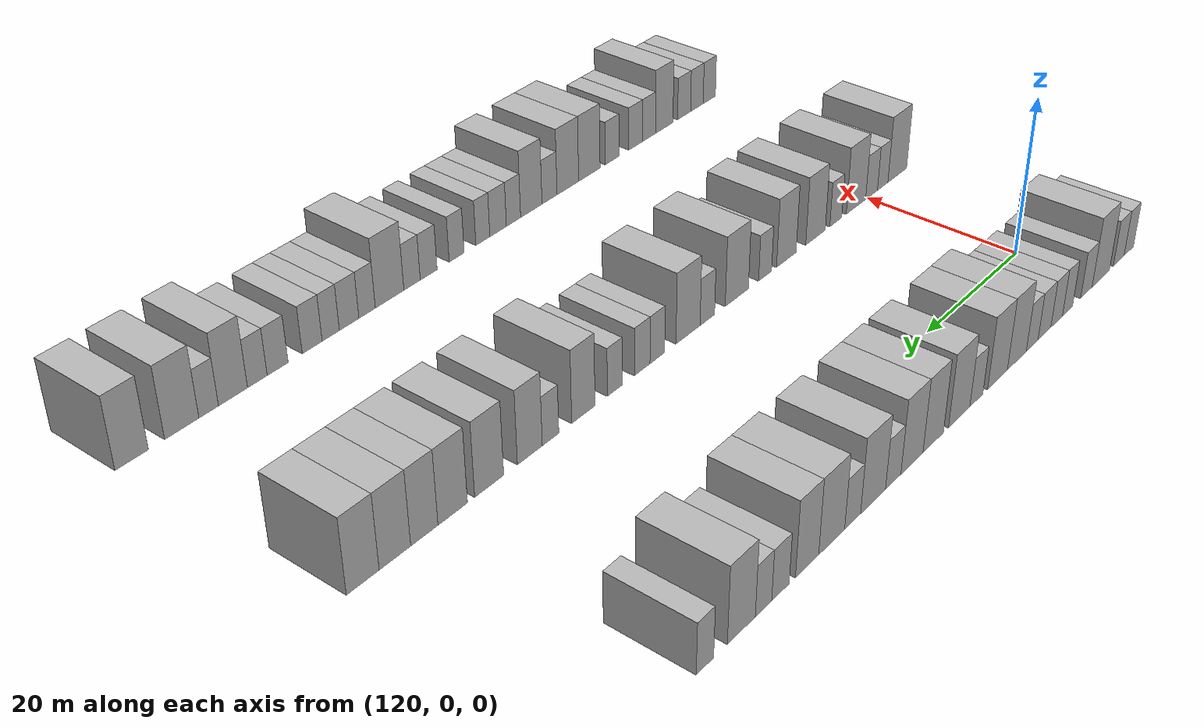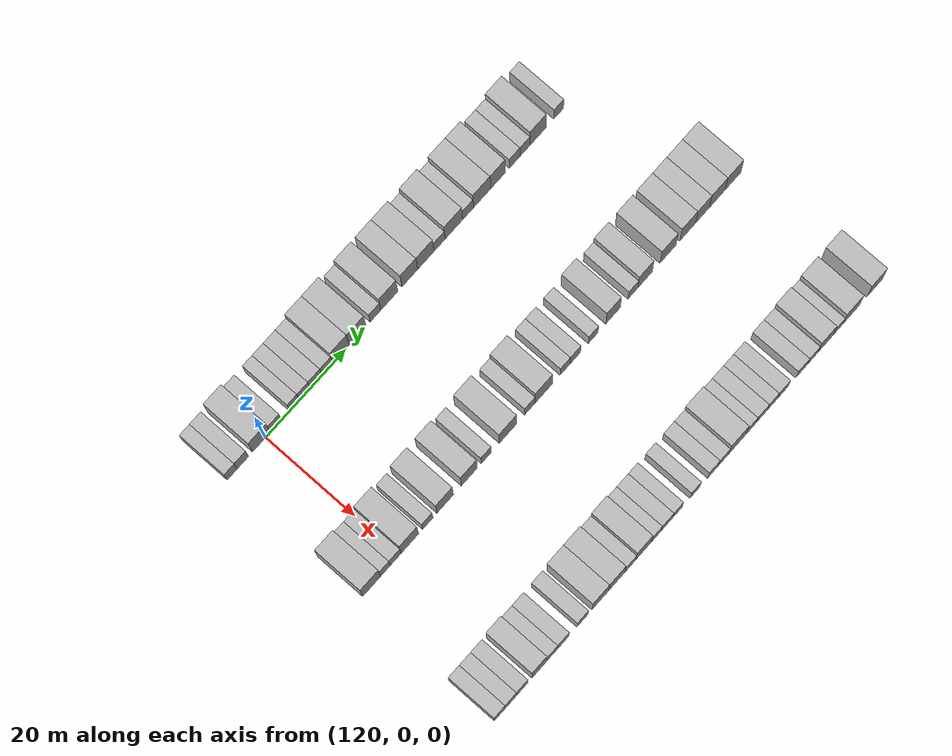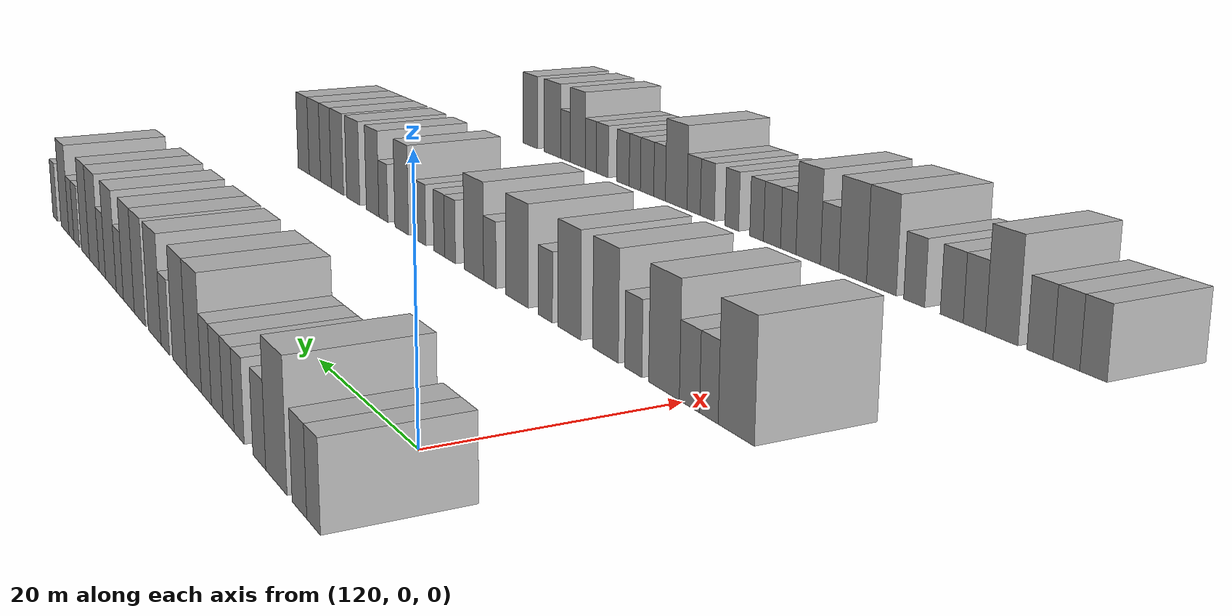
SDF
<sdf version="1.6">
 <world name="default">
  <model name="building_794">
   <static>1</static>
   <pose>115.0000 -8.3090 0 0.000000 0.000000 0.000000</pose>
   <link name="link">
    <pose>0 0 3.00 0 0 0</pose>
    <collision name="collision"><geometry><box><size>10.0000 2.4852 6.0000</size></box></geometry></collision>
    <visual name="visual">
     <cast_shadows>0</cast_shadows>
     <geometry><box><size>10.0000 2.4852 6.0000</size></box></geometry>
     <material>
      <script>
       <uri>model://HANNAS_wall/materials/scripts</uri>
       <uri>model://HANNAS_wall/materials/textures</uri>
       <name>vrc/HANNAS_wall</name>
      </script>
     </material>
    </visual>
   </link>
  </model>
  <model name="building_795">
   <static>1</static>
   <pose>115.0000 -5.6638 0 0.000000 0.000000 0.000000</pose>
   <link name="link">
    <pose>0 0 3.00 0 0 0</pose>
    <collision name="collision"><geometry><box><size>10.0000 2.8053 6.0000</size></box></geometry></collision>
    <visual name="visual">
     <cast_shadows>0</cast_shadows>
     <geometry><box><size>10.0000 2.8053 6.0000</size></box></geometry>
     <material>
      <script>
       <uri>model://HANNAS_wall/materials/scripts</uri>
       <uri>model://HANNAS_wall/materials/textures</uri>
       <name>vrc/HANNAS_wall</name>
      </script>
     </material>
    </visual>
   </link>
  </model>
  <model name="building_796">
   <static>1</static>
   <pose>115.0000 -1.0613 0 0.000000 0.000000 0.000000</pose>
   <link name="link">
    <pose>0 0 4.50 0 0 0</pose>
    <collision name="collision"><geometry><box><size>10.0000 4.3996 9.0000</size></box></geometry></collision>
    <visual name="visual">
     <cast_shadows>0</cast_shadows>
     <geometry><box><size>10.0000 4.3996 9.0000</size></box></geometry>
     <material>
      <script>
       <uri>model://HANNAS_wall/materials/scripts</uri>
       <uri>model://HANNAS_wall/materials/textures</uri>
       <name>vrc/HANNAS_wall</name>
      </script>
     </material>
    </visual>
   </link>
  </model>
  <model name="building_797">
   <static>1</static>
   <pose>115.0000 2.5554 0 0.000000 0.000000 0.000000</pose>
   <link name="link">
    <pose>0 0 3.00 0 0 0</pose>
    <collision name="collision"><geometry><box><size>10.0000 2.8340 6.0000</size></box></geometry></collision>
    <visual name="visual">
     <cast_shadows>0</cast_shadows>
     <geometry><box><size>10.0000 2.8340 6.0000</size></box></geometry>
     <material>
      <script>
       <uri>model://HANNAS_wall/materials/scripts</uri>
       <uri>model://HANNAS_wall/materials/textures</uri>
       <name>vrc/HANNAS_wall</name>
      </script>
     </material>
    </visual>
   </link>
  </model>
  <model name="building_798">
   <static>1</static>
   <pose>115.0000 7.1792 0 0.000000 0.000000 0.000000</pose>
   <link name="link">
    <pose>0 0 3.00 0 0 0</pose>
    <collision name="collision"><geometry><box><size>10.0000 2.4135 6.0000</size></box></geometry></collision>
    <visual name="visual">
     <cast_shadows>0</cast_shadows>
     <geometry><box><size>10.0000 2.4135 6.0000</size></box></geometry>
     <material>
      <script>
       <uri>model://HANNAS_wall/materials/scripts</uri>
       <uri>model://HANNAS_wall/materials/textures</uri>
       <name>vrc/HANNAS_wall</name>
      </script>
     </material>
    </visual>
   </link>
  </model>
  <model name="building_799">
   <static>1</static>
   <pose>115.0000 9.7535 0 0.000000 0.000000 0.000000</pose>
   <link name="link">
    <pose>0 0 3.00 0 0 0</pose>
    <collision name="collision"><geometry><box><size>10.0000 2.7353 6.0000</size></box></geometry></collision>
    <visual name="visual">
     <cast_shadows>0</cast_shadows>
     <geometry><box><size>10.0000 2.7353 6.0000</size></box></geometry>
     <material>
      <script>
       <uri>model://HANNAS_wall/materials/scripts</uri>
       <uri>model://HANNAS_wall/materials/textures</uri>
       <name>vrc/HANNAS_wall</name>
      </script>
     </material>
    </visual>
   </link>
  </model>
  <model name="building_800">
   <static>1</static>
   <pose>115.0000 12.6080 0 0.000000 0.000000 0.000000</pose>
   <link name="link">
    <pose>0 0 3.00 0 0 0</pose>
    <collision name="collision"><geometry><box><size>10.0000 2.9737 6.0000</size></box></geometry></collision>
    <visual name="visual">
     <cast_shadows>0</cast_shadows>
     <geometry><box><size>10.0000 2.9737 6.0000</size></box></geometry>
     <material>
      <script>
       <uri>model://HANNAS_wall/materials/scripts</uri>
       <uri>model://HANNAS_wall/materials/textures</uri>
       <name>vrc/HANNAS_wall</name>
      </script>
     </material>
    </visual>
   </link>
  </model>
  <model name="building_801">
   <static>1</static>
   <pose>115.0000 15.4291 0 0.000000 0.000000 0.000000</pose>
   <link name="link">
    <pose>0 0 3.00 0 0 0</pose>
    <collision name="collision"><geometry><box><size>10.0000 2.6686 6.0000</size></box></geometry></collision>
    <visual name="visual">
     <cast_shadows>0</cast_shadows>
     <geometry><box><size>10.0000 2.6686 6.0000</size></box></geometry>
     <material>
      <script>
       <uri>model://HANNAS_wall/materials/scripts</uri>
       <uri>model://HANNAS_wall/materials/textures</uri>
       <name>vrc/HANNAS_wall</name>
      </script>
     </material>
    </visual>
   </link>
  </model>
  <model name="building_802">
   <static>1</static>
   <pose>115.0000 18.8560 0 0.000000 0.000000 0.000000</pose>
   <link name="link">
    <pose>0 0 4.50 0 0 0</pose>
    <collision name="collision"><geometry><box><size>10.0000 4.1851 9.0000</size></box></geometry></collision>
    <visual name="visual">
     <cast_shadows>0</cast_shadows>
     <geometry><box><size>10.0000 4.1851 9.0000</size></box></geometry>
     <material>
      <script>
       <uri>model://HANNAS_wall/materials/scripts</uri>
       <uri>model://HANNAS_wall/materials/textures</uri>
       <name>vrc/HANNAS_wall</name>
      </script>
     </material>
    </visual>
   </link>
  </model>
  <model name="building_803">
   <static>1</static>
   <pose>115.0000 23.0743 0 0.000000 0.000000 0.000000</pose>
   <link name="link">
    <pose>0 0 4.50 0 0 0</pose>
    <collision name="collision"><geometry><box><size>10.0000 4.2515 9.0000</size></box></geometry></collision>
    <visual name="visual">
     <cast_shadows>0</cast_shadows>
     <geometry><box><size>10.0000 4.2515 9.0000</size></box></geometry>
     <material>
      <script>
       <uri>model://HANNAS_wall/materials/scripts</uri>
       <uri>model://HANNAS_wall/materials/textures</uri>
       <name>vrc/HANNAS_wall</name>
      </script>
     </material>
    </visual>
   </link>
  </model>
  <model name="building_804">
   <static>1</static>
   <pose>115.0000 27.5548 0 0.000000 0.000000 0.000000</pose>
   <link name="link">
    <pose>0 0 3.00 0 0 0</pose>
    <collision name="collision"><geometry><box><size>10.0000 2.7096 6.0000</size></box></geometry></collision>
    <visual name="visual">
     <cast_shadows>0</cast_shadows>
     <geometry><box><size>10.0000 2.7096 6.0000</size></box></geometry>
     <material>
      <script>
       <uri>model://HANNAS_wall/materials/scripts</uri>
       <uri>model://HANNAS_wall/materials/textures</uri>
       <name>vrc/HANNAS_wall</name>
      </script>
     </material>
    </visual>
   </link>
  </model>
  <model name="building_805">
   <static>1</static>
   <pose>115.0000 31.0713 0 0.000000 0.000000 0.000000</pose>
   <link name="link">
    <pose>0 0 4.50 0 0 0</pose>
    <collision name="collision"><geometry><box><size>10.0000 4.3234 9.0000</size></box></geometry></collision>
    <visual name="visual">
     <cast_shadows>0</cast_shadows>
     <geometry><box><size>10.0000 4.3234 9.0000</size></box></geometry>
     <material>
      <script>
       <uri>model://HANNAS_wall/materials/scripts</uri>
       <uri>model://HANNAS_wall/materials/textures</uri>
       <name>vrc/HANNAS_wall</name>
      </script>
     </material>
    </visual>
   </link>
  </model>
  <model name="building_806">
   <static>1</static>
   <pose>115.0000 36.2288 0 0.000000 0.000000 0.000000</pose>
   <link name="link">
    <pose>0 0 4.50 0 0 0</pose>
    <collision name="collision"><geometry><box><size>10.0000 3.9916 9.0000</size></box></geometry></collision>
    <visual name="visual">
     <cast_shadows>0</cast_shadows>
     <geometry><box><size>10.0000 3.9916 9.0000</size></box></geometry>
     <material>
      <script>
       <uri>model://HANNAS_wall/materials/scripts</uri>
       <uri>model://HANNAS_wall/materials/textures</uri>
       <name>vrc/HANNAS_wall</name>
      </script>
     </material>
    </visual>
   </link>
  </model>
  <model name="building_807">
   <static>1</static>
   <pose>115.0000 40.3157 0 0.000000 0.000000 0.000000</pose>
   <link name="link">
    <pose>0 0 4.50 0 0 0</pose>
    <collision name="collision"><geometry><box><size>10.0000 4.1824 9.0000</size></box></geometry></collision>
    <visual name="visual">
     <cast_shadows>0</cast_shadows>
     <geometry><box><size>10.0000 4.1824 9.0000</size></box></geometry>
     <material>
      <script>
       <uri>model://HANNAS_wall/materials/scripts</uri>
       <uri>model://HANNAS_wall/materials/textures</uri>
       <name>vrc/HANNAS_wall</name>
      </script>
     </material>
    </visual>
   </link>
  </model>
  <model name="building_808">
   <static>1</static>
   <pose>115.0000 43.8195 0 0.000000 0.000000 0.000000</pose>
   <link name="link">
    <pose>0 0 3.00 0 0 0</pose>
    <collision name="collision"><geometry><box><size>10.0000 2.8252 6.0000</size></box></geometry></collision>
    <visual name="visual">
     <cast_shadows>0</cast_shadows>
     <geometry><box><size>10.0000 2.8252 6.0000</size></box></geometry>
     <material>
      <script>
       <uri>model://HANNAS_wall/materials/scripts</uri>
       <uri>model://HANNAS_wall/materials/textures</uri>
       <name>vrc/HANNAS_wall</name>
      </script>
     </material>
    </visual>
   </link>
  </model>
  <model name="building_809">
   <static>1</static>
   <pose>115.0000 47.4599 0 0.000000 0.000000 0.000000</pose>
   <link name="link">
    <pose>0 0 4.50 0 0 0</pose>
    <collision name="collision"><geometry><box><size>10.0000 4.4556 9.0000</size></box></geometry></collision>
    <visual name="visual">
     <cast_shadows>0</cast_shadows>
     <geometry><box><size>10.0000 4.4556 9.0000</size></box></geometry>
     <material>
      <script>
       <uri>model://HANNAS_wall/materials/scripts</uri>
       <uri>model://HANNAS_wall/materials/textures</uri>
       <name>vrc/HANNAS_wall</name>
      </script>
     </material>
    </visual>
   </link>
  </model>
  <model name="building_810">
   <static>1</static>
   <pose>115.0000 51.0722 0 0.000000 0.000000 0.000000</pose>
   <link name="link">
    <pose>0 0 3.00 0 0 0</pose>
    <collision name="collision"><geometry><box><size>10.0000 2.7689 6.0000</size></box></geometry></collision>
    <visual name="visual">
     <cast_shadows>0</cast_shadows>
     <geometry><box><size>10.0000 2.7689 6.0000</size></box></geometry>
     <material>
      <script>
       <uri>model://HANNAS_wall/materials/scripts</uri>
       <uri>model://HANNAS_wall/materials/textures</uri>
       <name>vrc/HANNAS_wall</name>
      </script>
     </material>
    </visual>
   </link>
  </model>
  <model name="building_811">
   <static>1</static>
   <pose>115.0000 54.6493 0 0.000000 0.000000 0.000000</pose>
   <link name="link">
    <pose>0 0 4.50 0 0 0</pose>
    <collision name="collision"><geometry><box><size>10.0000 4.3854 9.0000</size></box></geometry></collision>
    <visual name="visual">
     <cast_shadows>0</cast_shadows>
     <geometry><box><size>10.0000 4.3854 9.0000</size></box></geometry>
     <material>
      <script>
       <uri>model://HANNAS_wall/materials/scripts</uri>
       <uri>model://HANNAS_wall/materials/textures</uri>
       <name>vrc/HANNAS_wall</name>
      </script>
     </material>
    </visual>
   </link>
  </model>
  <model name="building_812">
   <static>1</static>
   <pose>115.0000 58.7381 0 0.000000 0.000000 0.000000</pose>
   <link name="link">
    <pose>0 0 4.50 0 0 0</pose>
    <collision name="collision"><geometry><box><size>10.0000 3.7921 9.0000</size></box></geometry></collision>
    <visual name="visual">
     <cast_shadows>0</cast_shadows>
     <geometry><box><size>10.0000 3.7921 9.0000</size></box></geometry>
     <material>
      <script>
       <uri>model://HANNAS_wall/materials/scripts</uri>
       <uri>model://HANNAS_wall/materials/textures</uri>
       <name>vrc/HANNAS_wall</name>
      </script>
     </material>
    </visual>
   </link>
  </model>
  <model name="building_813">
   <static>1</static>
   <pose>115.0000 63.0121 0 0.000000 0.000000 0.000000</pose>
   <link name="link">
    <pose>0 0 3.00 0 0 0</pose>
    <collision name="collision"><geometry><box><size>10.0000 2.7558 6.0000</size></box></geometry></collision>
    <visual name="visual">
     <cast_shadows>0</cast_shadows>
     <geometry><box><size>10.0000 2.7558 6.0000</size></box></geometry>
     <material>
      <script>
       <uri>model://HANNAS_wall/materials/scripts</uri>
       <uri>model://HANNAS_wall/materials/textures</uri>
       <name>vrc/HANNAS_wall</name>
      </script>
     </material>
    </visual>
   </link>
  </model>
  <model name="building_814">
   <static>1</static>
   <pose>115.0000 65.6531 0 0.000000 0.000000 0.000000</pose>
   <link name="link">
    <pose>0 0 3.00 0 0 0</pose>
    <collision name="collision"><geometry><box><size>10.0000 2.5263 6.0000</size></box></geometry></collision>
    <visual name="visual">
     <cast_shadows>0</cast_shadows>
     <geometry><box><size>10.0000 2.5263 6.0000</size></box></geometry>
     <material>
      <script>
       <uri>model://HANNAS_wall/materials/scripts</uri>
       <uri>model://HANNAS_wall/materials/textures</uri>
       <name>vrc/HANNAS_wall</name>
      </script>
     </material>
    </visual>
   </link>
  </model>
  <model name="building_815">
   <static>1</static>
   <pose>115.0000 69.0038 0 0.000000 0.000000 0.000000</pose>
   <link name="link">
    <pose>0 0 4.50 0 0 0</pose>
    <collision name="collision"><geometry><box><size>10.0000 4.1751 9.0000</size></box></geometry></collision>
    <visual name="visual">
     <cast_shadows>0</cast_shadows>
     <geometry><box><size>10.0000 4.1751 9.0000</size></box></geometry>
     <material>
      <script>
       <uri>model://HANNAS_wall/materials/scripts</uri>
       <uri>model://HANNAS_wall/materials/textures</uri>
       <name>vrc/HANNAS_wall</name>
      </script>
     </material>
    </visual>
   </link>
  </model>
  <model name="building_816">
   <static>1</static>
   <pose>115.0000 74.3374 0 0.000000 0.000000 0.000000</pose>
   <link name="link">
    <pose>0 0 3.00 0 0 0</pose>
    <collision name="collision"><geometry><box><size>10.0000 2.4922 6.0000</size></box></geometry></collision>
    <visual name="visual">
     <cast_shadows>0</cast_shadows>
     <geometry><box><size>10.0000 2.4922 6.0000</size></box></geometry>
     <material>
      <script>
       <uri>model://HANNAS_wall/materials/scripts</uri>
       <uri>model://HANNAS_wall/materials/textures</uri>
       <name>vrc/HANNAS_wall</name>
      </script>
     </material>
    </visual>
   </link>
  </model>
  <model name="building_1031">
   <static>1</static>
   <pose>145.0000 -6.9509 0 0.000000 0.000000 0.000000</pose>
   <link name="link">
    <pose>0 0 4.50 0 0 0</pose>
    <collision name="collision"><geometry><box><size>10.0000 4.4426 9.0000</size></box></geometry></collision>
    <visual name="visual">
     <cast_shadows>0</cast_shadows>
     <geometry><box><size>10.0000 4.4426 9.0000</size></box></geometry>
     <material>
      <script>
       <uri>model://HANNAS_wall/materials/scripts</uri>
       <uri>model://HANNAS_wall/materials/textures</uri>
       <name>vrc/HANNAS_wall</name>
      </script>
     </material>
    </visual>
   </link>
  </model>
  <model name="building_1032">
   <static>1</static>
   <pose>145.0000 -3.5189 0 0.000000 0.000000 0.000000</pose>
   <link name="link">
    <pose>0 0 3.00 0 0 0</pose>
    <collision name="collision"><geometry><box><size>10.0000 2.4214 6.0000</size></box></geometry></collision>
    <visual name="visual">
     <cast_shadows>0</cast_shadows>
     <geometry><box><size>10.0000 2.4214 6.0000</size></box></geometry>
     <material>
      <script>
       <uri>model://HANNAS_wall/materials/scripts</uri>
       <uri>model://HANNAS_wall/materials/textures</uri>
       <name>vrc/HANNAS_wall</name>
      </script>
     </material>
    </visual>
   </link>
  </model>
  <model name="building_1033">
   <static>1</static>
   <pose>145.0000 -0.9528 0 0.000000 0.000000 0.000000</pose>
   <link name="link">
    <pose>0 0 3.00 0 0 0</pose>
    <collision name="collision"><geometry><box><size>10.0000 2.7107 6.0000</size></box></geometry></collision>
    <visual name="visual">
     <cast_shadows>0</cast_shadows>
     <geometry><box><size>10.0000 2.7107 6.0000</size></box></geometry>
     <material>
      <script>
       <uri>model://HANNAS_wall/materials/scripts</uri>
       <uri>model://HANNAS_wall/materials/textures</uri>
       <name>vrc/HANNAS_wall</name>
      </script>
     </material>
    </visual>
   </link>
  </model>
  <model name="building_1034">
   <static>1</static>
   <pose>145.0000 2.5804 0 0.000000 0.000000 0.000000</pose>
   <link name="link">
    <pose>0 0 4.50 0 0 0</pose>
    <collision name="collision"><geometry><box><size>10.0000 4.3556 9.0000</size></box></geometry></collision>
    <visual name="visual">
     <cast_shadows>0</cast_shadows>
     <geometry><box><size>10.0000 4.3556 9.0000</size></box></geometry>
     <material>
      <script>
       <uri>model://HANNAS_wall/materials/scripts</uri>
       <uri>model://HANNAS_wall/materials/textures</uri>
       <name>vrc/HANNAS_wall</name>
      </script>
     </material>
    </visual>
   </link>
  </model>
  <model name="building_1035">
   <static>1</static>
   <pose>145.0000 7.0560 0 0.000000 0.000000 0.000000</pose>
   <link name="link">
    <pose>0 0 3.00 0 0 0</pose>
    <collision name="collision"><geometry><box><size>10.0000 2.5956 6.0000</size></box></geometry></collision>
    <visual name="visual">
     <cast_shadows>0</cast_shadows>
     <geometry><box><size>10.0000 2.5956 6.0000</size></box></geometry>
     <material>
      <script>
       <uri>model://HANNAS_wall/materials/scripts</uri>
       <uri>model://HANNAS_wall/materials/textures</uri>
       <name>vrc/HANNAS_wall</name>
      </script>
     </material>
    </visual>
   </link>
  </model>
  <model name="building_1036">
   <static>1</static>
   <pose>145.0000 11.4209 0 0.000000 0.000000 0.000000</pose>
   <link name="link">
    <pose>0 0 4.50 0 0 0</pose>
    <collision name="collision"><geometry><box><size>10.0000 4.1343 9.0000</size></box></geometry></collision>
    <visual name="visual">
     <cast_shadows>0</cast_shadows>
     <geometry><box><size>10.0000 4.1343 9.0000</size></box></geometry>
     <material>
      <script>
       <uri>model://HANNAS_wall/materials/scripts</uri>
       <uri>model://HANNAS_wall/materials/textures</uri>
       <name>vrc/HANNAS_wall</name>
      </script>
     </material>
    </visual>
   </link>
  </model>
  <model name="building_1037">
   <static>1</static>
   <pose>145.0000 17.4856 0 0.000000 0.000000 0.000000</pose>
   <link name="link">
    <pose>0 0 4.50 0 0 0</pose>
    <collision name="collision"><geometry><box><size>10.0000 3.9952 9.0000</size></box></geometry></collision>
    <visual name="visual">
     <cast_shadows>0</cast_shadows>
     <geometry><box><size>10.0000 3.9952 9.0000</size></box></geometry>
     <material>
      <script>
       <uri>model://HANNAS_wall/materials/scripts</uri>
       <uri>model://HANNAS_wall/materials/textures</uri>
       <name>vrc/HANNAS_wall</name>
      </script>
     </material>
    </visual>
   </link>
  </model>
  <model name="building_1038">
   <static>1</static>
   <pose>145.0000 21.7685 0 0.000000 0.000000 0.000000</pose>
   <link name="link">
    <pose>0 0 3.00 0 0 0</pose>
    <collision name="collision"><geometry><box><size>10.0000 2.5706 6.0000</size></box></geometry></collision>
    <visual name="visual">
     <cast_shadows>0</cast_shadows>
     <geometry><box><size>10.0000 2.5706 6.0000</size></box></geometry>
     <material>
      <script>
       <uri>model://HANNAS_wall/materials/scripts</uri>
       <uri>model://HANNAS_wall/materials/textures</uri>
       <name>vrc/HANNAS_wall</name>
      </script>
     </material>
    </visual>
   </link>
  </model>
  <model name="building_1039">
   <static>1</static>
   <pose>145.0000 27.2655 0 0.000000 0.000000 0.000000</pose>
   <link name="link">
    <pose>0 0 4.50 0 0 0</pose>
    <collision name="collision"><geometry><box><size>10.0000 4.4233 9.0000</size></box></geometry></collision>
    <visual name="visual">
     <cast_shadows>0</cast_shadows>
     <geometry><box><size>10.0000 4.4233 9.0000</size></box></geometry>
     <material>
      <script>
       <uri>model://HANNAS_wall/materials/scripts</uri>
       <uri>model://HANNAS_wall/materials/textures</uri>
       <name>vrc/HANNAS_wall</name>
      </script>
     </material>
    </visual>
   </link>
  </model>
  <model name="building_1040">
   <static>1</static>
   <pose>145.0000 32.8113 0 0.000000 0.000000 0.000000</pose>
   <link name="link">
    <pose>0 0 3.00 0 0 0</pose>
    <collision name="collision"><geometry><box><size>10.0000 2.6684 6.0000</size></box></geometry></collision>
    <visual name="visual">
     <cast_shadows>0</cast_shadows>
     <geometry><box><size>10.0000 2.6684 6.0000</size></box></geometry>
     <material>
      <script>
       <uri>model://HANNAS_wall/materials/scripts</uri>
       <uri>model://HANNAS_wall/materials/textures</uri>
       <name>vrc/HANNAS_wall</name>
      </script>
     </material>
    </visual>
   </link>
  </model>
  <model name="building_1041">
   <static>1</static>
   <pose>145.0000 36.3082 0 0.000000 0.000000 0.000000</pose>
   <link name="link">
    <pose>0 0 4.50 0 0 0</pose>
    <collision name="collision"><geometry><box><size>10.0000 4.3254 9.0000</size></box></geometry></collision>
    <visual name="visual">
     <cast_shadows>0</cast_shadows>
     <geometry><box><size>10.0000 4.3254 9.0000</size></box></geometry>
     <material>
      <script>
       <uri>model://HANNAS_wall/materials/scripts</uri>
       <uri>model://HANNAS_wall/materials/textures</uri>
       <name>vrc/HANNAS_wall</name>
      </script>
     </material>
    </visual>
   </link>
  </model>
  <model name="building_1042">
   <static>1</static>
   <pose>145.0000 41.7417 0 0.000000 0.000000 0.000000</pose>
   <link name="link">
    <pose>0 0 3.00 0 0 0</pose>
    <collision name="collision"><geometry><box><size>10.0000 2.5417 6.0000</size></box></geometry></collision>
    <visual name="visual">
     <cast_shadows>0</cast_shadows>
     <geometry><box><size>10.0000 2.5417 6.0000</size></box></geometry>
     <material>
      <script>
       <uri>model://HANNAS_wall/materials/scripts</uri>
       <uri>model://HANNAS_wall/materials/textures</uri>
       <name>vrc/HANNAS_wall</name>
      </script>
     </material>
    </visual>
   </link>
  </model>
  <model name="building_1043">
   <static>1</static>
   <pose>145.0000 44.3353 0 0.000000 0.000000 0.000000</pose>
   <link name="link">
    <pose>0 0 3.00 0 0 0</pose>
    <collision name="collision"><geometry><box><size>10.0000 2.6455 6.0000</size></box></geometry></collision>
    <visual name="visual">
     <cast_shadows>0</cast_shadows>
     <geometry><box><size>10.0000 2.6455 6.0000</size></box></geometry>
     <material>
      <script>
       <uri>model://HANNAS_wall/materials/scripts</uri>
       <uri>model://HANNAS_wall/materials/textures</uri>
       <name>vrc/HANNAS_wall</name>
      </script>
     </material>
    </visual>
   </link>
  </model>
  <model name="building_1044">
   <static>1</static>
   <pose>145.0000 48.8938 0 0.000000 0.000000 0.000000</pose>
   <link name="link">
    <pose>0 0 3.00 0 0 0</pose>
    <collision name="collision"><geometry><box><size>10.0000 2.4715 6.0000</size></box></geometry></collision>
    <visual name="visual">
     <cast_shadows>0</cast_shadows>
     <geometry><box><size>10.0000 2.4715 6.0000</size></box></geometry>
     <material>
      <script>
       <uri>model://HANNAS_wall/materials/scripts</uri>
       <uri>model://HANNAS_wall/materials/textures</uri>
       <name>vrc/HANNAS_wall</name>
      </script>
     </material>
    </visual>
   </link>
  </model>
  <model name="building_1045">
   <static>1</static>
   <pose>145.0000 53.9756 0 0.000000 0.000000 0.000000</pose>
   <link name="link">
    <pose>0 0 4.50 0 0 0</pose>
    <collision name="collision"><geometry><box><size>10.0000 3.6921 9.0000</size></box></geometry></collision>
    <visual name="visual">
     <cast_shadows>0</cast_shadows>
     <geometry><box><size>10.0000 3.6921 9.0000</size></box></geometry>
     <material>
      <script>
       <uri>model://HANNAS_wall/materials/scripts</uri>
       <uri>model://HANNAS_wall/materials/textures</uri>
       <name>vrc/HANNAS_wall</name>
      </script>
     </material>
    </visual>
   </link>
  </model>
  <model name="building_1046">
   <static>1</static>
   <pose>145.0000 59.0805 0 0.000000 0.000000 0.000000</pose>
   <link name="link">
    <pose>0 0 3.00 0 0 0</pose>
    <collision name="collision"><geometry><box><size>10.0000 2.5176 6.0000</size></box></geometry></collision>
    <visual name="visual">
     <cast_shadows>0</cast_shadows>
     <geometry><box><size>10.0000 2.5176 6.0000</size></box></geometry>
     <material>
      <script>
       <uri>model://HANNAS_wall/materials/scripts</uri>
       <uri>model://HANNAS_wall/materials/textures</uri>
       <name>vrc/HANNAS_wall</name>
      </script>
     </material>
    </visual>
   </link>
  </model>
  <model name="building_1047">
   <static>1</static>
   <pose>145.0000 62.1937 0 0.000000 0.000000 0.000000</pose>
   <link name="link">
    <pose>0 0 4.50 0 0 0</pose>
    <collision name="collision"><geometry><box><size>10.0000 3.7089 9.0000</size></box></geometry></collision>
    <visual name="visual">
     <cast_shadows>0</cast_shadows>
     <geometry><box><size>10.0000 3.7089 9.0000</size></box></geometry>
     <material>
      <script>
       <uri>model://HANNAS_wall/materials/scripts</uri>
       <uri>model://HANNAS_wall/materials/textures</uri>
       <name>vrc/HANNAS_wall</name>
      </script>
     </material>
    </visual>
   </link>
  </model>
  <model name="building_1048">
   <static>1</static>
   <pose>145.0000 68.1113 0 0.000000 0.000000 0.000000</pose>
   <link name="link">
    <pose>0 0 4.50 0 0 0</pose>
    <collision name="collision"><geometry><box><size>10.0000 4.1263 9.0000</size></box></geometry></collision>
    <visual name="visual">
     <cast_shadows>0</cast_shadows>
     <geometry><box><size>10.0000 4.1263 9.0000</size></box></geometry>
     <material>
      <script>
       <uri>model://HANNAS_wall/materials/scripts</uri>
       <uri>model://HANNAS_wall/materials/textures</uri>
       <name>vrc/HANNAS_wall</name>
      </script>
     </material>
    </visual>
   </link>
  </model>
  <model name="building_1049">
   <static>1</static>
   <pose>145.0000 73.1885 0 0.000000 0.000000 0.000000</pose>
   <link name="link">
    <pose>0 0 4.50 0 0 0</pose>
    <collision name="collision"><geometry><box><size>10.0000 4.0281 9.0000</size></box></geometry></collision>
    <visual name="visual">
     <cast_shadows>0</cast_shadows>
     <geometry><box><size>10.0000 4.0281 9.0000</size></box></geometry>
     <material>
      <script>
       <uri>model://HANNAS_wall/materials/scripts</uri>
       <uri>model://HANNAS_wall/materials/textures</uri>
       <name>vrc/HANNAS_wall</name>
      </script>
     </material>
    </visual>
   </link>
  </model>
  <model name="building_1050">
   <static>1</static>
   <pose>145.0000 77.0109 0 0.000000 0.000000 0.000000</pose>
   <link name="link">
    <pose>0 0 4.50 0 0 0</pose>
    <collision name="collision"><geometry><box><size>10.0000 3.6168 9.0000</size></box></geometry></collision>
    <visual name="visual">
     <cast_shadows>0</cast_shadows>
     <geometry><box><size>10.0000 3.6168 9.0000</size></box></geometry>
     <material>
      <script>
       <uri>model://HANNAS_wall/materials/scripts</uri>
       <uri>model://HANNAS_wall/materials/textures</uri>
       <name>vrc/HANNAS_wall</name>
      </script>
     </material>
    </visual>
   </link>
  </model>
  <model name="building_1051">
   <static>1</static>
   <pose>145.0000 80.8475 0 0.000000 0.000000 0.000000</pose>
   <link name="link">
    <pose>0 0 4.50 0 0 0</pose>
    <collision name="collision"><geometry><box><size>10.0000 4.0564 9.0000</size></box></geometry></collision>
    <visual name="visual">
     <cast_shadows>0</cast_shadows>
     <geometry><box><size>10.0000 4.0564 9.0000</size></box></geometry>
     <material>
      <script>
       <uri>model://HANNAS_wall/materials/scripts</uri>
       <uri>model://HANNAS_wall/materials/textures</uri>
       <name>vrc/HANNAS_wall</name>
      </script>
     </material>
    </visual>
   </link>
  </model>
  <model name="building_1052">
   <static>1</static>
   <pose>145.0000 84.9177 0 0.000000 0.000000 0.000000</pose>
   <link name="link">
    <pose>0 0 4.50 0 0 0</pose>
    <collision name="collision"><geometry><box><size>10.0000 4.0839 9.0000</size></box></geometry></collision>
    <visual name="visual">
     <cast_shadows>0</cast_shadows>
     <geometry><box><size>10.0000 4.0839 9.0000</size></box></geometry>
     <material>
      <script>
       <uri>model://HANNAS_wall/materials/scripts</uri>
       <uri>model://HANNAS_wall/materials/textures</uri>
       <name>vrc/HANNAS_wall</name>
      </script>
     </material>
    </visual>
   </link>
  </model>
  <model name="building_1253">
   <static>1</static>
   <pose>175.0000 -8.8101 0 0.000000 0.000000 0.000000</pose>
   <link name="link">
    <pose>0 0 3.00 0 0 0</pose>
    <collision name="collision"><geometry><box><size>10.0000 2.7425 6.0000</size></box></geometry></collision>
    <visual name="visual">
     <cast_shadows>0</cast_shadows>
     <geometry><box><size>10.0000 2.7425 6.0000</size></box></geometry>
     <material>
      <script>
       <uri>model://HANNAS_wall/materials/scripts</uri>
       <uri>model://HANNAS_wall/materials/textures</uri>
       <name>vrc/HANNAS_wall</name>
      </script>
     </material>
    </visual>
   </link>
  </model>
  <model name="building_1254">
   <static>1</static>
   <pose>175.0000 -6.0400 0 0.000000 0.000000 0.000000</pose>
   <link name="link">
    <pose>0 0 3.00 0 0 0</pose>
    <collision name="collision"><geometry><box><size>10.0000 2.7976 6.0000</size></box></geometry></collision>
    <visual name="visual">
     <cast_shadows>0</cast_shadows>
     <geometry><box><size>10.0000 2.7976 6.0000</size></box></geometry>
     <material>
      <script>
       <uri>model://HANNAS_wall/materials/scripts</uri>
       <uri>model://HANNAS_wall/materials/textures</uri>
       <name>vrc/HANNAS_wall</name>
      </script>
     </material>
    </visual>
   </link>
  </model>
  <model name="building_1255">
   <static>1</static>
   <pose>175.0000 -3.2268 0 0.000000 0.000000 0.000000</pose>
   <link name="link">
    <pose>0 0 3.00 0 0 0</pose>
    <collision name="collision"><geometry><box><size>10.0000 2.8288 6.0000</size></box></geometry></collision>
    <visual name="visual">
     <cast_shadows>0</cast_shadows>
     <geometry><box><size>10.0000 2.8288 6.0000</size></box></geometry>
     <material>
      <script>
       <uri>model://HANNAS_wall/materials/scripts</uri>
       <uri>model://HANNAS_wall/materials/textures</uri>
       <name>vrc/HANNAS_wall</name>
      </script>
     </material>
    </visual>
   </link>
  </model>
  <model name="building_1256">
   <static>1</static>
   <pose>175.0000 1.0447 0 0.000000 0.000000 0.000000</pose>
   <link name="link">
    <pose>0 0 4.50 0 0 0</pose>
    <collision name="collision"><geometry><box><size>10.0000 3.7142 9.0000</size></box></geometry></collision>
    <visual name="visual">
     <cast_shadows>0</cast_shadows>
     <geometry><box><size>10.0000 3.7142 9.0000</size></box></geometry>
     <material>
      <script>
       <uri>model://HANNAS_wall/materials/scripts</uri>
       <uri>model://HANNAS_wall/materials/textures</uri>
       <name>vrc/HANNAS_wall</name>
      </script>
     </material>
    </visual>
   </link>
  </model>
  <model name="building_1257">
   <static>1</static>
   <pose>175.0000 4.2482 0 0.000000 0.000000 0.000000</pose>
   <link name="link">
    <pose>0 0 3.00 0 0 0</pose>
    <collision name="collision"><geometry><box><size>10.0000 2.6929 6.0000</size></box></geometry></collision>
    <visual name="visual">
     <cast_shadows>0</cast_shadows>
     <geometry><box><size>10.0000 2.6929 6.0000</size></box></geometry>
     <material>
      <script>
       <uri>model://HANNAS_wall/materials/scripts</uri>
       <uri>model://HANNAS_wall/materials/textures</uri>
       <name>vrc/HANNAS_wall</name>
      </script>
     </material>
    </visual>
   </link>
  </model>
  <model name="building_1258">
   <static>1</static>
   <pose>175.0000 7.0266 0 0.000000 0.000000 0.000000</pose>
   <link name="link">
    <pose>0 0 3.00 0 0 0</pose>
    <collision name="collision"><geometry><box><size>10.0000 2.8640 6.0000</size></box></geometry></collision>
    <visual name="visual">
     <cast_shadows>0</cast_shadows>
     <geometry><box><size>10.0000 2.8640 6.0000</size></box></geometry>
     <material>
      <script>
       <uri>model://HANNAS_wall/materials/scripts</uri>
       <uri>model://HANNAS_wall/materials/textures</uri>
       <name>vrc/HANNAS_wall</name>
      </script>
     </material>
    </visual>
   </link>
  </model>
  <model name="building_1259">
   <static>1</static>
   <pose>175.0000 11.8461 0 0.000000 0.000000 0.000000</pose>
   <link name="link">
    <pose>0 0 3.00 0 0 0</pose>
    <collision name="collision"><geometry><box><size>10.0000 2.7749 6.0000</size></box></geometry></collision>
    <visual name="visual">
     <cast_shadows>0</cast_shadows>
     <geometry><box><size>10.0000 2.7749 6.0000</size></box></geometry>
     <material>
      <script>
       <uri>model://HANNAS_wall/materials/scripts</uri>
       <uri>model://HANNAS_wall/materials/textures</uri>
       <name>vrc/HANNAS_wall</name>
      </script>
     </material>
    </visual>
   </link>
  </model>
  <model name="building_1260">
   <static>1</static>
   <pose>175.0000 16.3205 0 0.000000 0.000000 0.000000</pose>
   <link name="link">
    <pose>0 0 4.50 0 0 0</pose>
    <collision name="collision"><geometry><box><size>10.0000 4.1740 9.0000</size></box></geometry></collision>
    <visual name="visual">
     <cast_shadows>0</cast_shadows>
     <geometry><box><size>10.0000 4.1740 9.0000</size></box></geometry>
     <material>
      <script>
       <uri>model://HANNAS_wall/materials/scripts</uri>
       <uri>model://HANNAS_wall/materials/textures</uri>
       <name>vrc/HANNAS_wall</name>
      </script>
     </material>
    </visual>
   </link>
  </model>
  <model name="building_1261">
   <static>1</static>
   <pose>175.0000 20.4666 0 0.000000 0.000000 0.000000</pose>
   <link name="link">
    <pose>0 0 4.50 0 0 0</pose>
    <collision name="collision"><geometry><box><size>10.0000 4.1181 9.0000</size></box></geometry></collision>
    <visual name="visual">
     <cast_shadows>0</cast_shadows>
     <geometry><box><size>10.0000 4.1181 9.0000</size></box></geometry>
     <material>
      <script>
       <uri>model://HANNAS_wall/materials/scripts</uri>
       <uri>model://HANNAS_wall/materials/textures</uri>
       <name>vrc/HANNAS_wall</name>
      </script>
     </material>
    </visual>
   </link>
  </model>
  <model name="building_1262">
   <static>1</static>
   <pose>175.0000 23.9221 0 0.000000 0.000000 0.000000</pose>
   <link name="link">
    <pose>0 0 3.00 0 0 0</pose>
    <collision name="collision"><geometry><box><size>10.0000 2.7929 6.0000</size></box></geometry></collision>
    <visual name="visual">
     <cast_shadows>0</cast_shadows>
     <geometry><box><size>10.0000 2.7929 6.0000</size></box></geometry>
     <material>
      <script>
       <uri>model://HANNAS_wall/materials/scripts</uri>
       <uri>model://HANNAS_wall/materials/textures</uri>
       <name>vrc/HANNAS_wall</name>
      </script>
     </material>
    </visual>
   </link>
  </model>
  <model name="building_1263">
   <static>1</static>
   <pose>175.0000 27.2671 0 0.000000 0.000000 0.000000</pose>
   <link name="link">
    <pose>0 0 4.50 0 0 0</pose>
    <collision name="collision"><geometry><box><size>10.0000 3.8970 9.0000</size></box></geometry></collision>
    <visual name="visual">
     <cast_shadows>0</cast_shadows>
     <geometry><box><size>10.0000 3.8970 9.0000</size></box></geometry>
     <material>
      <script>
       <uri>model://HANNAS_wall/materials/scripts</uri>
       <uri>model://HANNAS_wall/materials/textures</uri>
       <name>vrc/HANNAS_wall</name>
      </script>
     </material>
    </visual>
   </link>
  </model>
  <model name="building_1264">
   <static>1</static>
   <pose>175.0000 30.4868 0 0.000000 0.000000 0.000000</pose>
   <link name="link">
    <pose>0 0 3.00 0 0 0</pose>
    <collision name="collision"><geometry><box><size>10.0000 2.5425 6.0000</size></box></geometry></collision>
    <visual name="visual">
     <cast_shadows>0</cast_shadows>
     <geometry><box><size>10.0000 2.5425 6.0000</size></box></geometry>
     <material>
      <script>
       <uri>model://HANNAS_wall/materials/scripts</uri>
       <uri>model://HANNAS_wall/materials/textures</uri>
       <name>vrc/HANNAS_wall</name>
      </script>
     </material>
    </visual>
   </link>
  </model>
  <model name="building_1265">
   <static>1</static>
   <pose>175.0000 33.2091 0 0.000000 0.000000 0.000000</pose>
   <link name="link">
    <pose>0 0 3.00 0 0 0</pose>
    <collision name="collision"><geometry><box><size>10.0000 2.9021 6.0000</size></box></geometry></collision>
    <visual name="visual">
     <cast_shadows>0</cast_shadows>
     <geometry><box><size>10.0000 2.9021 6.0000</size></box></geometry>
     <material>
      <script>
       <uri>model://HANNAS_wall/materials/scripts</uri>
       <uri>model://HANNAS_wall/materials/textures</uri>
       <name>vrc/HANNAS_wall</name>
      </script>
     </material>
    </visual>
   </link>
  </model>
  <model name="building_1266">
   <static>1</static>
   <pose>175.0000 35.8633 0 0.000000 0.000000 0.000000</pose>
   <link name="link">
    <pose>0 0 3.00 0 0 0</pose>
    <collision name="collision"><geometry><box><size>10.0000 2.4063 6.0000</size></box></geometry></collision>
    <visual name="visual">
     <cast_shadows>0</cast_shadows>
     <geometry><box><size>10.0000 2.4063 6.0000</size></box></geometry>
     <material>
      <script>
       <uri>model://HANNAS_wall/materials/scripts</uri>
       <uri>model://HANNAS_wall/materials/textures</uri>
       <name>vrc/HANNAS_wall</name>
      </script>
     </material>
    </visual>
   </link>
  </model>
  <model name="building_1267">
   <static>1</static>
   <pose>175.0000 40.3214 0 0.000000 0.000000 0.000000</pose>
   <link name="link">
    <pose>0 0 3.00 0 0 0</pose>
    <collision name="collision"><geometry><box><size>10.0000 2.5098 6.0000</size></box></geometry></collision>
    <visual name="visual">
     <cast_shadows>0</cast_shadows>
     <geometry><box><size>10.0000 2.5098 6.0000</size></box></geometry>
     <material>
      <script>
       <uri>model://HANNAS_wall/materials/scripts</uri>
       <uri>model://HANNAS_wall/materials/textures</uri>
       <name>vrc/HANNAS_wall</name>
      </script>
     </material>
    </visual>
   </link>
  </model>
  <model name="building_1268">
   <static>1</static>
   <pose>175.0000 44.9439 0 0.000000 0.000000 0.000000</pose>
   <link name="link">
    <pose>0 0 3.00 0 0 0</pose>
    <collision name="collision"><geometry><box><size>10.0000 2.7352 6.0000</size></box></geometry></collision>
    <visual name="visual">
     <cast_shadows>0</cast_shadows>
     <geometry><box><size>10.0000 2.7352 6.0000</size></box></geometry>
     <material>
      <script>
       <uri>model://HANNAS_wall/materials/scripts</uri>
       <uri>model://HANNAS_wall/materials/textures</uri>
       <name>vrc/HANNAS_wall</name>
      </script>
     </material>
    </visual>
   </link>
  </model>
  <model name="building_1269">
   <static>1</static>
   <pose>175.0000 47.6229 0 0.000000 0.000000 0.000000</pose>
   <link name="link">
    <pose>0 0 3.00 0 0 0</pose>
    <collision name="collision"><geometry><box><size>10.0000 2.6228 6.0000</size></box></geometry></collision>
    <visual name="visual">
     <cast_shadows>0</cast_shadows>
     <geometry><box><size>10.0000 2.6228 6.0000</size></box></geometry>
     <material>
      <script>
       <uri>model://HANNAS_wall/materials/scripts</uri>
       <uri>model://HANNAS_wall/materials/textures</uri>
       <name>vrc/HANNAS_wall</name>
      </script>
     </material>
    </visual>
   </link>
  </model>
  <model name="building_1270">
   <static>1</static>
   <pose>175.0000 51.1633 0 0.000000 0.000000 0.000000</pose>
   <link name="link">
    <pose>0 0 4.50 0 0 0</pose>
    <collision name="collision"><geometry><box><size>10.0000 4.4580 9.0000</size></box></geometry></collision>
    <visual name="visual">
     <cast_shadows>0</cast_shadows>
     <geometry><box><size>10.0000 4.4580 9.0000</size></box></geometry>
     <material>
      <script>
       <uri>model://HANNAS_wall/materials/scripts</uri>
       <uri>model://HANNAS_wall/materials/textures</uri>
       <name>vrc/HANNAS_wall</name>
      </script>
     </material>
    </visual>
   </link>
  </model>
  <model name="building_1271">
   <static>1</static>
   <pose>175.0000 54.6459 0 0.000000 0.000000 0.000000</pose>
   <link name="link">
    <pose>0 0 3.00 0 0 0</pose>
    <collision name="collision"><geometry><box><size>10.0000 2.5071 6.0000</size></box></geometry></collision>
    <visual name="visual">
     <cast_shadows>0</cast_shadows>
     <geometry><box><size>10.0000 2.5071 6.0000</size></box></geometry>
     <material>
      <script>
       <uri>model://HANNAS_wall/materials/scripts</uri>
       <uri>model://HANNAS_wall/materials/textures</uri>
       <name>vrc/HANNAS_wall</name>
      </script>
     </material>
    </visual>
   </link>
  </model>
  <model name="building_1272">
   <static>1</static>
   <pose>175.0000 57.3604 0 0.000000 0.000000 0.000000</pose>
   <link name="link">
    <pose>0 0 3.00 0 0 0</pose>
    <collision name="collision"><geometry><box><size>10.0000 2.9219 6.0000</size></box></geometry></collision>
    <visual name="visual">
     <cast_shadows>0</cast_shadows>
     <geometry><box><size>10.0000 2.9219 6.0000</size></box></geometry>
     <material>
      <script>
       <uri>model://HANNAS_wall/materials/scripts</uri>
       <uri>model://HANNAS_wall/materials/textures</uri>
       <name>vrc/HANNAS_wall</name>
      </script>
     </material>
    </visual>
   </link>
  </model>
  <model name="building_1273">
   <static>1</static>
   <pose>175.0000 60.0852 0 0.000000 0.000000 0.000000</pose>
   <link name="link">
    <pose>0 0 3.00 0 0 0</pose>
    <collision name="collision"><geometry><box><size>10.0000 2.5277 6.0000</size></box></geometry></collision>
    <visual name="visual">
     <cast_shadows>0</cast_shadows>
     <geometry><box><size>10.0000 2.5277 6.0000</size></box></geometry>
     <material>
      <script>
       <uri>model://HANNAS_wall/materials/scripts</uri>
       <uri>model://HANNAS_wall/materials/textures</uri>
       <name>vrc/HANNAS_wall</name>
      </script>
     </material>
    </visual>
   </link>
  </model>
  <model name="building_1274">
   <static>1</static>
   <pose>175.0000 62.7851 0 0.000000 0.000000 0.000000</pose>
   <link name="link">
    <pose>0 0 3.00 0 0 0</pose>
    <collision name="collision"><geometry><box><size>10.0000 2.8720 6.0000</size></box></geometry></collision>
    <visual name="visual">
     <cast_shadows>0</cast_shadows>
     <geometry><box><size>10.0000 2.8720 6.0000</size></box></geometry>
     <material>
      <script>
       <uri>model://HANNAS_wall/materials/scripts</uri>
       <uri>model://HANNAS_wall/materials/textures</uri>
       <name>vrc/HANNAS_wall</name>
      </script>
     </material>
    </visual>
   </link>
  </model>
  <model name="building_1275">
   <static>1</static>
   <pose>175.0000 67.6776 0 0.000000 0.000000 0.000000</pose>
   <link name="link">
    <pose>0 0 3.00 0 0 0</pose>
    <collision name="collision"><geometry><box><size>10.0000 2.9130 6.0000</size></box></geometry></collision>
    <visual name="visual">
     <cast_shadows>0</cast_shadows>
     <geometry><box><size>10.0000 2.9130 6.0000</size></box></geometry>
     <material>
      <script>
       <uri>model://HANNAS_wall/materials/scripts</uri>
       <uri>model://HANNAS_wall/materials/textures</uri>
       <name>vrc/HANNAS_wall</name>
      </script>
     </material>
    </visual>
   </link>
  </model>
  <model name="building_1276">
   <static>1</static>
   <pose>175.0000 70.4760 0 0.000000 0.000000 0.000000</pose>
   <link name="link">
    <pose>0 0 3.00 0 0 0</pose>
    <collision name="collision"><geometry><box><size>10.0000 2.6838 6.0000</size></box></geometry></collision>
    <visual name="visual">
     <cast_shadows>0</cast_shadows>
     <geometry><box><size>10.0000 2.6838 6.0000</size></box></geometry>
     <material>
      <script>
       <uri>model://HANNAS_wall/materials/scripts</uri>
       <uri>model://HANNAS_wall/materials/textures</uri>
       <name>vrc/HANNAS_wall</name>
      </script>
     </material>
    </visual>
   </link>
  </model>
  <model name="building_1277">
   <static>1</static>
   <pose>175.0000 73.7525 0 0.000000 0.000000 0.000000</pose>
   <link name="link">
    <pose>0 0 4.50 0 0 0</pose>
    <collision name="collision"><geometry><box><size>10.0000 3.8692 9.0000</size></box></geometry></collision>
    <visual name="visual">
     <cast_shadows>0</cast_shadows>
     <geometry><box><size>10.0000 3.8692 9.0000</size></box></geometry>
     <material>
      <script>
       <uri>model://HANNAS_wall/materials/scripts</uri>
       <uri>model://HANNAS_wall/materials/textures</uri>
       <name>vrc/HANNAS_wall</name>
      </script>
     </material>
    </visual>
   </link>
  </model>
  <model name="building_1278">
   <static>1</static>
   <pose>175.0000 76.9617 0 0.000000 0.000000 0.000000</pose>
   <link name="link">
    <pose>0 0 3.00 0 0 0</pose>
    <collision name="collision"><geometry><box><size>10.0000 2.5492 6.0000</size></box></geometry></collision>
    <visual name="visual">
     <cast_shadows>0</cast_shadows>
     <geometry><box><size>10.0000 2.5492 6.0000</size></box></geometry>
     <material>
      <script>
       <uri>model://HANNAS_wall/materials/scripts</uri>
       <uri>model://HANNAS_wall/materials/textures</uri>
       <name>vrc/HANNAS_wall</name>
      </script>
     </material>
    </visual>
   </link>
  </model>
  <model name="building_1279">
   <static>1</static>
   <pose>175.0000 80.4147 0 0.000000 0.000000 0.000000</pose>
   <link name="link">
    <pose>0 0 4.50 0 0 0</pose>
    <collision name="collision"><geometry><box><size>10.0000 4.3570 9.0000</size></box></geometry></collision>
    <visual name="visual">
     <cast_shadows>0</cast_shadows>
     <geometry><box><size>10.0000 4.3570 9.0000</size></box></geometry>
     <material>
      <script>
       <uri>model://HANNAS_wall/materials/scripts</uri>
       <uri>model://HANNAS_wall/materials/textures</uri>
       <name>vrc/HANNAS_wall</name>
      </script>
     </material>
    </visual>
   </link>
  </model>
  <model name="building_1280">
   <static>1</static>
   <pose>175.0000 86.6274 0 0.000000 0.000000 0.000000</pose>
   <link name="link">
    <pose>0 0 4.50 0 0 0</pose>
    <collision name="collision"><geometry><box><size>10.0000 4.0683 9.0000</size></box></geometry></collision>
    <visual name="visual">
     <cast_shadows>0</cast_shadows>
     <geometry><box><size>10.0000 4.0683 9.0000</size></box></geometry>
     <material>
      <script>
       <uri>model://HANNAS_wall/materials/scripts</uri>
       <uri>model://HANNAS_wall/materials/textures</uri>
       <name>vrc/HANNAS_wall</name>
      </script>
     </material>
    </visual>
   </link>
  </model>
 </world>
</sdf>
